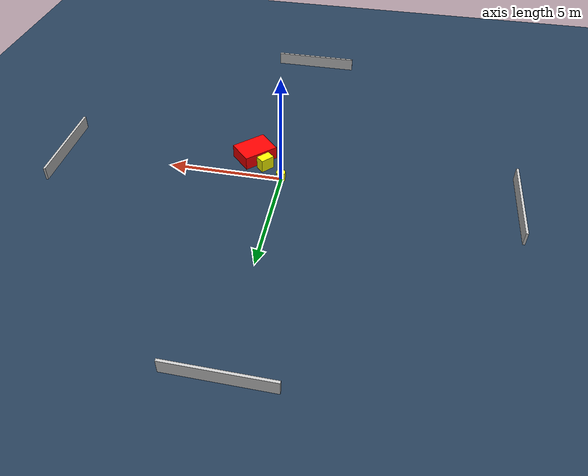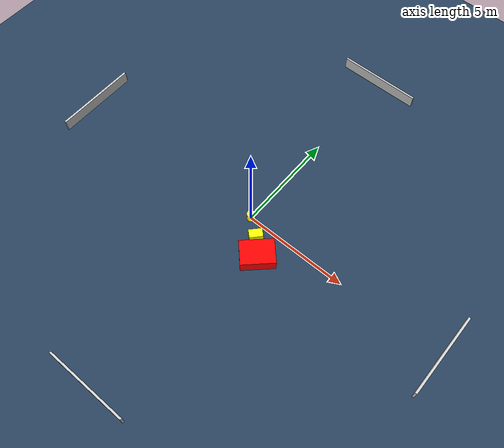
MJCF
<?xml version="1.0" ?>
<mujoco model="generated_environment">
  <option timestep="0.01" integrator="RK4" cone="elliptic"/>
  <default>
    <geom density="1"/>
  </default>
  <asset>
    <texture builtin="gradient" height="3072" name="skybox" rgb1="0.3 0.5 0.7" rgb2="0 0 0" type="skybox" width="512"/>
    <texture builtin="checker" height="300" name="groundplane" rgb1="0.2 0.3 0.4" rgb2="0.1 0.2 0.3" type="2d" width="300"/>
    <material name="groundplane" reflectance="0.2" texrepeat="5 5" texture="groundplane"/>
  </asset>
  <worldbody>
    <light dir="0 0 -1" directional="true" pos="0 0 1.5"/>
    <geom condim="3" friction="0.5 0.005 0.001" material="groundplane" name="floor" pos="0 0 0" size="0 0 0.05" type="plane"/>
    <body name="walls">
      <geom name="wall_1" condim="4" pos="-10.0 0.0 0.3" rgba="0.800000011920929 0.800000011920929 0.800000011920929 1.0" size="0.05 2.0 0.3" type="box"/>
      <geom name="wall_2" condim="4" pos="10.0 0.0 0.3" rgba="0.800000011920929 0.800000011920929 0.800000011920929 1.0" size="0.05 2.0 0.3" type="box"/>
      <geom name="wall_3" condim="4" pos="0.0 -10.0 0.3" rgba="0.800000011920929 0.800000011920929 0.800000011920929 1.0" size="2.0 0.05 0.3" type="box"/>
      <geom name="wall_4" condim="4" pos="0.0 10.0 0.3" rgba="0.800000011920929 0.800000011920929 0.800000011920929 1.0" size="2.0 0.05 0.3" type="box"/>
    </body>
    <body name="robot">
      <joint name="joint_x" type="slide" pos="0 0 0" axis="1 0 0"/>
      <joint name="joint_y" type="slide" pos="0 0 0" axis="0 1 0"/>
      <geom name="robot" type="cylinder" pos="0.0 0.0 0.2" size="0.2 0.2 0.0" mass="5.0" friction="1.0 0.005 0.0001" condim="4" rgba="1.0 1.0 0.0 1.0"/>
    </body>
    <body name="obstacle_1_movable">
      <geom name="obstacle_1_movable" condim="4" pos="0.8357665813445936 -0.6736501675998557 0.3" euler="0 0 227.57213298253942" friction="0.0 0.005 0.001" rgba="1.0 1.0 0.0 1.0" size="0.3131602114308586 0.20554014809886023 0.3" type="box" mass="0.1"/>
      <joint type="free"/>
    </body>
    <body name="obstacle_2_static">
      <geom name="obstacle_2_static" condim="4" pos="1.4626359677349177 -1.3185459820332357 0.3" euler="0 0 43.6624311372052" friction="0.0 0.005 0.001" rgba="1.0 0.0 0.0 1.0" size="0.7859518098185394 0.5870185484559901 0.3" type="box"/>
    </body>
  </worldbody>
  <actuator>
    <motor name="actuator_x" joint="joint_x" gear="1" ctrlrange="-1 1"/>
    <motor name="actuator_y" joint="joint_y" gear="1" ctrlrange="-1 1"/>
  </actuator>
</mujoco>
